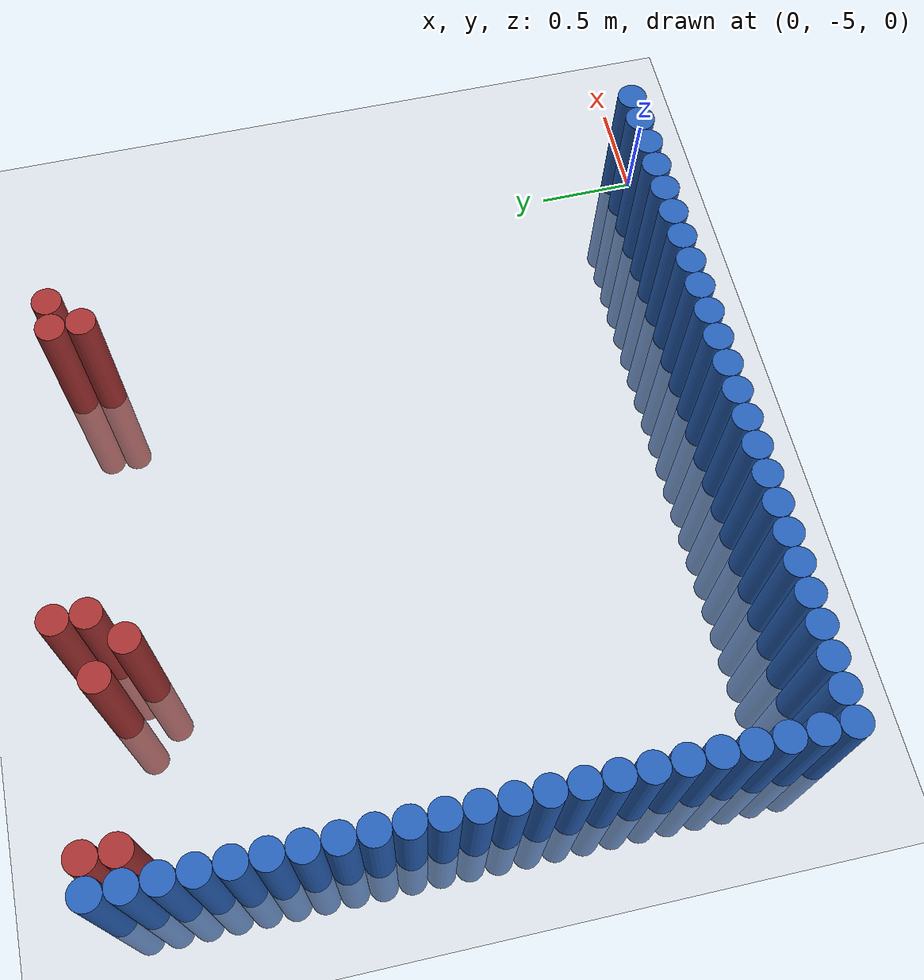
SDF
<sdf version="1.7">
 <world name="default">
  <model name="ground_plane">
   <static>1</static>
   <link name="link">
    <collision name="collision">
     <geometry><plane><normal>0 0 1</normal><size>100 100</size></plane></geometry>
     <surface><friction><ode><mu>100</mu><mu2>50</mu2></ode></friction></surface>
    </collision>
    <visual name="visual">
     <cast_shadows>0</cast_shadows>
     <geometry><plane><normal>0 0 1</normal><size>100 100</size></plane></geometry>
     <material>
      <script><uri>file://media/materials/scripts/gazebo.material</uri><name>Gazebo/Grey</name></script>
     </material>
    </visual>
   </link>
  </model>
  <model name="unit_cylinder_26">
   <static>1</static>
   <pose>0.025 -4.925 0 0 -0 0</pose>
   <link name="link">
    <inertial>
     <mass>1</mass>
     <inertia><ixx>0.145833</ixx><ixy>0</ixy><ixz>0</ixz><iyy>0.145833</iyy><iyz>0</iyz><izz>0.125</izz></inertia>
    </inertial>
    <collision name="collision">
     <geometry><cylinder><radius>0.075</radius><length>1.5</length></cylinder></geometry>
    </collision>
    <visual name="visual">
     <geometry><cylinder><radius>0.075</radius><length>1.5</length></cylinder></geometry>
     <material><ambient>0.152 0.379 0.72 1</ambient><diffuse>0.152 0.379 0.72 1</diffuse></material>
     <material>
      <script><name>Gazebo/Grey</name><uri>file://media/materials/scripts/gazebo.material</uri></script>
     </material>
    </visual>
   </link>
  </model>
  <model name="unit_cylinder_27">
   <static>1</static>
   <pose>-0.125 -4.925 0 0 -0 0</pose>
   <link name="link">
    <inertial>
     <mass>1</mass>
     <inertia><ixx>0.145833</ixx><ixy>0</ixy><ixz>0</ixz><iyy>0.145833</iyy><iyz>0</iyz><izz>0.125</izz></inertia>
    </inertial>
    <collision name="collision">
     <geometry><cylinder><radius>0.075</radius><length>1.5</length></cylinder></geometry>
    </collision>
    <visual name="visual">
     <geometry><cylinder><radius>0.075</radius><length>1.5</length></cylinder></geometry>
     <material><ambient>0.152 0.379 0.72 1</ambient><diffuse>0.152 0.379 0.72 1</diffuse></material>
     <material>
      <script><name>Gazebo/Grey</name><uri>file://media/materials/scripts/gazebo.material</uri></script>
     </material>
    </visual>
   </link>
  </model>
  <model name="unit_cylinder_28">
   <static>1</static>
   <pose>-0.275 -4.925 0 0 -0 0</pose>
   <link name="link">
    <inertial>
     <mass>1</mass>
     <inertia><ixx>0.145833</ixx><ixy>0</ixy><ixz>0</ixz><iyy>0.145833</iyy><iyz>0</iyz><izz>0.125</izz></inertia>
    </inertial>
    <collision name="collision">
     <geometry><cylinder><radius>0.075</radius><length>1.5</length></cylinder></geometry>
    </collision>
    <visual name="visual">
     <geometry><cylinder><radius>0.075</radius><length>1.5</length></cylinder></geometry>
     <material><ambient>0.152 0.379 0.72 1</ambient><diffuse>0.152 0.379 0.72 1</diffuse></material>
     <material>
      <script><name>Gazebo/Grey</name><uri>file://media/materials/scripts/gazebo.material</uri></script>
     </material>
    </visual>
   </link>
  </model>
  <model name="unit_cylinder_29">
   <static>1</static>
   <pose>-0.425 -4.925 0 0 -0 0</pose>
   <link name="link">
    <inertial>
     <mass>1</mass>
     <inertia><ixx>0.145833</ixx><ixy>0</ixy><ixz>0</ixz><iyy>0.145833</iyy><iyz>0</iyz><izz>0.125</izz></inertia>
    </inertial>
    <collision name="collision">
     <geometry><cylinder><radius>0.075</radius><length>1.5</length></cylinder></geometry>
    </collision>
    <visual name="visual">
     <geometry><cylinder><radius>0.075</radius><length>1.5</length></cylinder></geometry>
     <material><ambient>0.152 0.379 0.72 1</ambient><diffuse>0.152 0.379 0.72 1</diffuse></material>
     <material>
      <script><name>Gazebo/Grey</name><uri>file://media/materials/scripts/gazebo.material</uri></script>
     </material>
    </visual>
   </link>
  </model>
  <model name="unit_cylinder_30">
   <static>1</static>
   <pose>-0.575 -4.925 0 0 -0 0</pose>
   <link name="link">
    <inertial>
     <mass>1</mass>
     <inertia><ixx>0.145833</ixx><ixy>0</ixy><ixz>0</ixz><iyy>0.145833</iyy><iyz>0</iyz><izz>0.125</izz></inertia>
    </inertial>
    <collision name="collision">
     <geometry><cylinder><radius>0.075</radius><length>1.5</length></cylinder></geometry>
    </collision>
    <visual name="visual">
     <geometry><cylinder><radius>0.075</radius><length>1.5</length></cylinder></geometry>
     <material><ambient>0.152 0.379 0.72 1</ambient><diffuse>0.152 0.379 0.72 1</diffuse></material>
     <material>
      <script><name>Gazebo/Grey</name><uri>file://media/materials/scripts/gazebo.material</uri></script>
     </material>
    </visual>
   </link>
  </model>
  <model name="unit_cylinder_31">
   <static>1</static>
   <pose>-0.725 -4.925 0 0 -0 0</pose>
   <link name="link">
    <inertial>
     <mass>1</mass>
     <inertia><ixx>0.145833</ixx><ixy>0</ixy><ixz>0</ixz><iyy>0.145833</iyy><iyz>0</iyz><izz>0.125</izz></inertia>
    </inertial>
    <collision name="collision">
     <geometry><cylinder><radius>0.075</radius><length>1.5</length></cylinder></geometry>
    </collision>
    <visual name="visual">
     <geometry><cylinder><radius>0.075</radius><length>1.5</length></cylinder></geometry>
     <material><ambient>0.152 0.379 0.72 1</ambient><diffuse>0.152 0.379 0.72 1</diffuse></material>
     <material>
      <script><name>Gazebo/Grey</name><uri>file://media/materials/scripts/gazebo.material</uri></script>
     </material>
    </visual>
   </link>
  </model>
  <model name="unit_cylinder_32">
   <static>1</static>
   <pose>-0.875 -4.925 0 0 -0 0</pose>
   <link name="link">
    <inertial>
     <mass>1</mass>
     <inertia><ixx>0.145833</ixx><ixy>0</ixy><ixz>0</ixz><iyy>0.145833</iyy><iyz>0</iyz><izz>0.125</izz></inertia>
    </inertial>
    <collision name="collision">
     <geometry><cylinder><radius>0.075</radius><length>1.5</length></cylinder></geometry>
    </collision>
    <visual name="visual">
     <geometry><cylinder><radius>0.075</radius><length>1.5</length></cylinder></geometry>
     <material><ambient>0.152 0.379 0.72 1</ambient><diffuse>0.152 0.379 0.72 1</diffuse></material>
     <material>
      <script><name>Gazebo/Grey</name><uri>file://media/materials/scripts/gazebo.material</uri></script>
     </material>
    </visual>
   </link>
  </model>
  <model name="unit_cylinder_33">
   <static>1</static>
   <pose>-1.025 -4.925 0 0 -0 0</pose>
   <link name="link">
    <inertial>
     <mass>1</mass>
     <inertia><ixx>0.145833</ixx><ixy>0</ixy><ixz>0</ixz><iyy>0.145833</iyy><iyz>0</iyz><izz>0.125</izz></inertia>
    </inertial>
    <collision name="collision">
     <geometry><cylinder><radius>0.075</radius><length>1.5</length></cylinder></geometry>
    </collision>
    <visual name="visual">
     <geometry><cylinder><radius>0.075</radius><length>1.5</length></cylinder></geometry>
     <material><ambient>0.152 0.379 0.72 1</ambient><diffuse>0.152 0.379 0.72 1</diffuse></material>
     <material>
      <script><name>Gazebo/Grey</name><uri>file://media/materials/scripts/gazebo.material</uri></script>
     </material>
    </visual>
   </link>
  </model>
  <model name="unit_cylinder_34">
   <static>1</static>
   <pose>-1.175 -4.925 0 0 -0 0</pose>
   <link name="link">
    <inertial>
     <mass>1</mass>
     <inertia><ixx>0.145833</ixx><ixy>0</ixy><ixz>0</ixz><iyy>0.145833</iyy><iyz>0</iyz><izz>0.125</izz></inertia>
    </inertial>
    <collision name="collision">
     <geometry><cylinder><radius>0.075</radius><length>1.5</length></cylinder></geometry>
    </collision>
    <visual name="visual">
     <geometry><cylinder><radius>0.075</radius><length>1.5</length></cylinder></geometry>
     <material><ambient>0.152 0.379 0.72 1</ambient><diffuse>0.152 0.379 0.72 1</diffuse></material>
     <material>
      <script><name>Gazebo/Grey</name><uri>file://media/materials/scripts/gazebo.material</uri></script>
     </material>
    </visual>
   </link>
  </model>
  <model name="unit_cylinder_35">
   <static>1</static>
   <pose>-1.325 -4.925 0 0 -0 0</pose>
   <link name="link">
    <inertial>
     <mass>1</mass>
     <inertia><ixx>0.145833</ixx><ixy>0</ixy><ixz>0</ixz><iyy>0.145833</iyy><iyz>0</iyz><izz>0.125</izz></inertia>
    </inertial>
    <collision name="collision">
     <geometry><cylinder><radius>0.075</radius><length>1.5</length></cylinder></geometry>
    </collision>
    <visual name="visual">
     <geometry><cylinder><radius>0.075</radius><length>1.5</length></cylinder></geometry>
     <material><ambient>0.152 0.379 0.72 1</ambient><diffuse>0.152 0.379 0.72 1</diffuse></material>
     <material>
      <script><name>Gazebo/Grey</name><uri>file://media/materials/scripts/gazebo.material</uri></script>
     </material>
    </visual>
   </link>
  </model>
  <model name="unit_cylinder_36">
   <static>1</static>
   <pose>-1.475 -4.925 0 0 -0 0</pose>
   <link name="link">
    <inertial>
     <mass>1</mass>
     <inertia><ixx>0.145833</ixx><ixy>0</ixy><ixz>0</ixz><iyy>0.145833</iyy><iyz>0</iyz><izz>0.125</izz></inertia>
    </inertial>
    <collision name="collision">
     <geometry><cylinder><radius>0.075</radius><length>1.5</length></cylinder></geometry>
    </collision>
    <visual name="visual">
     <geometry><cylinder><radius>0.075</radius><length>1.5</length></cylinder></geometry>
     <material><ambient>0.152 0.379 0.72 1</ambient><diffuse>0.152 0.379 0.72 1</diffuse></material>
     <material>
      <script><name>Gazebo/Grey</name><uri>file://media/materials/scripts/gazebo.material</uri></script>
     </material>
    </visual>
   </link>
  </model>
  <model name="unit_cylinder_37">
   <static>1</static>
   <pose>-1.625 -4.925 0 0 -0 0</pose>
   <link name="link">
    <inertial>
     <mass>1</mass>
     <inertia><ixx>0.145833</ixx><ixy>0</ixy><ixz>0</ixz><iyy>0.145833</iyy><iyz>0</iyz><izz>0.125</izz></inertia>
    </inertial>
    <collision name="collision">
     <geometry><cylinder><radius>0.075</radius><length>1.5</length></cylinder></geometry>
    </collision>
    <visual name="visual">
     <geometry><cylinder><radius>0.075</radius><length>1.5</length></cylinder></geometry>
     <material><ambient>0.152 0.379 0.72 1</ambient><diffuse>0.152 0.379 0.72 1</diffuse></material>
     <material>
      <script><name>Gazebo/Grey</name><uri>file://media/materials/scripts/gazebo.material</uri></script>
     </material>
    </visual>
   </link>
  </model>
  <model name="unit_cylinder_38">
   <static>1</static>
   <pose>-1.775 -4.925 0 0 -0 0</pose>
   <link name="link">
    <inertial>
     <mass>1</mass>
     <inertia><ixx>0.145833</ixx><ixy>0</ixy><ixz>0</ixz><iyy>0.145833</iyy><iyz>0</iyz><izz>0.125</izz></inertia>
    </inertial>
    <collision name="collision">
     <geometry><cylinder><radius>0.075</radius><length>1.5</length></cylinder></geometry>
    </collision>
    <visual name="visual">
     <geometry><cylinder><radius>0.075</radius><length>1.5</length></cylinder></geometry>
     <material><ambient>0.152 0.379 0.72 1</ambient><diffuse>0.152 0.379 0.72 1</diffuse></material>
     <material>
      <script><name>Gazebo/Grey</name><uri>file://media/materials/scripts/gazebo.material</uri></script>
     </material>
    </visual>
   </link>
  </model>
  <model name="unit_cylinder_39">
   <static>1</static>
   <pose>-1.925 -4.925 0 0 -0 0</pose>
   <link name="link">
    <inertial>
     <mass>1</mass>
     <inertia><ixx>0.145833</ixx><ixy>0</ixy><ixz>0</ixz><iyy>0.145833</iyy><iyz>0</iyz><izz>0.125</izz></inertia>
    </inertial>
    <collision name="collision">
     <geometry><cylinder><radius>0.075</radius><length>1.5</length></cylinder></geometry>
    </collision>
    <visual name="visual">
     <geometry><cylinder><radius>0.075</radius><length>1.5</length></cylinder></geometry>
     <material><ambient>0.152 0.379 0.72 1</ambient><diffuse>0.152 0.379 0.72 1</diffuse></material>
     <material>
      <script><name>Gazebo/Grey</name><uri>file://media/materials/scripts/gazebo.material</uri></script>
     </material>
    </visual>
   </link>
  </model>
  <model name="unit_cylinder_40">
   <static>1</static>
   <pose>-2.075 -4.925 0 0 -0 0</pose>
   <link name="link">
    <inertial>
     <mass>1</mass>
     <inertia><ixx>0.145833</ixx><ixy>0</ixy><ixz>0</ixz><iyy>0.145833</iyy><iyz>0</iyz><izz>0.125</izz></inertia>
    </inertial>
    <collision name="collision">
     <geometry><cylinder><radius>0.075</radius><length>1.5</length></cylinder></geometry>
    </collision>
    <visual name="visual">
     <geometry><cylinder><radius>0.075</radius><length>1.5</length></cylinder></geometry>
     <material><ambient>0.152 0.379 0.72 1</ambient><diffuse>0.152 0.379 0.72 1</diffuse></material>
     <material>
      <script><name>Gazebo/Grey</name><uri>file://media/materials/scripts/gazebo.material</uri></script>
     </material>
    </visual>
   </link>
  </model>
  <model name="unit_cylinder_41">
   <static>1</static>
   <pose>-2.225 -4.925 0 0 -0 0</pose>
   <link name="link">
    <inertial>
     <mass>1</mass>
     <inertia><ixx>0.145833</ixx><ixy>0</ixy><ixz>0</ixz><iyy>0.145833</iyy><iyz>0</iyz><izz>0.125</izz></inertia>
    </inertial>
    <collision name="collision">
     <geometry><cylinder><radius>0.075</radius><length>1.5</length></cylinder></geometry>
    </collision>
    <visual name="visual">
     <geometry><cylinder><radius>0.075</radius><length>1.5</length></cylinder></geometry>
     <material><ambient>0.152 0.379 0.72 1</ambient><diffuse>0.152 0.379 0.72 1</diffuse></material>
     <material>
      <script><name>Gazebo/Grey</name><uri>file://media/materials/scripts/gazebo.material</uri></script>
     </material>
    </visual>
   </link>
  </model>
  <model name="unit_cylinder_42">
   <static>1</static>
   <pose>-2.375 -4.925 0 0 -0 0</pose>
   <link name="link">
    <inertial>
     <mass>1</mass>
     <inertia><ixx>0.145833</ixx><ixy>0</ixy><ixz>0</ixz><iyy>0.145833</iyy><iyz>0</iyz><izz>0.125</izz></inertia>
    </inertial>
    <collision name="collision">
     <geometry><cylinder><radius>0.075</radius><length>1.5</length></cylinder></geometry>
    </collision>
    <visual name="visual">
     <geometry><cylinder><radius>0.075</radius><length>1.5</length></cylinder></geometry>
     <material><ambient>0.152 0.379 0.72 1</ambient><diffuse>0.152 0.379 0.72 1</diffuse></material>
     <material>
      <script><name>Gazebo/Grey</name><uri>file://media/materials/scripts/gazebo.material</uri></script>
     </material>
    </visual>
   </link>
  </model>
  <model name="unit_cylinder_43">
   <static>1</static>
   <pose>-2.525 -4.925 0 0 -0 0</pose>
   <link name="link">
    <inertial>
     <mass>1</mass>
     <inertia><ixx>0.145833</ixx><ixy>0</ixy><ixz>0</ixz><iyy>0.145833</iyy><iyz>0</iyz><izz>0.125</izz></inertia>
    </inertial>
    <collision name="collision">
     <geometry><cylinder><radius>0.075</radius><length>1.5</length></cylinder></geometry>
    </collision>
    <visual name="visual">
     <geometry><cylinder><radius>0.075</radius><length>1.5</length></cylinder></geometry>
     <material><ambient>0.152 0.379 0.72 1</ambient><diffuse>0.152 0.379 0.72 1</diffuse></material>
     <material>
      <script><name>Gazebo/Grey</name><uri>file://media/materials/scripts/gazebo.material</uri></script>
     </material>
    </visual>
   </link>
  </model>
  <model name="unit_cylinder_44">
   <static>1</static>
   <pose>-2.675 -4.925 0 0 -0 0</pose>
   <link name="link">
    <inertial>
     <mass>1</mass>
     <inertia><ixx>0.145833</ixx><ixy>0</ixy><ixz>0</ixz><iyy>0.145833</iyy><iyz>0</iyz><izz>0.125</izz></inertia>
    </inertial>
    <collision name="collision">
     <geometry><cylinder><radius>0.075</radius><length>1.5</length></cylinder></geometry>
    </collision>
    <visual name="visual">
     <geometry><cylinder><radius>0.075</radius><length>1.5</length></cylinder></geometry>
     <material><ambient>0.152 0.379 0.72 1</ambient><diffuse>0.152 0.379 0.72 1</diffuse></material>
     <material>
      <script><name>Gazebo/Grey</name><uri>file://media/materials/scripts/gazebo.material</uri></script>
     </material>
    </visual>
   </link>
  </model>
  <model name="unit_cylinder_45">
   <static>1</static>
   <pose>-2.825 -4.925 0 0 -0 0</pose>
   <link name="link">
    <inertial>
     <mass>1</mass>
     <inertia><ixx>0.145833</ixx><ixy>0</ixy><ixz>0</ixz><iyy>0.145833</iyy><iyz>0</iyz><izz>0.125</izz></inertia>
    </inertial>
    <collision name="collision">
     <geometry><cylinder><radius>0.075</radius><length>1.5</length></cylinder></geometry>
    </collision>
    <visual name="visual">
     <geometry><cylinder><radius>0.075</radius><length>1.5</length></cylinder></geometry>
     <material><ambient>0.152 0.379 0.72 1</ambient><diffuse>0.152 0.379 0.72 1</diffuse></material>
     <material>
      <script><name>Gazebo/Grey</name><uri>file://media/materials/scripts/gazebo.material</uri></script>
     </material>
    </visual>
   </link>
  </model>
  <model name="unit_cylinder_46">
   <static>1</static>
   <pose>-2.975 -4.925 0 0 -0 0</pose>
   <link name="link">
    <inertial>
     <mass>1</mass>
     <inertia><ixx>0.145833</ixx><ixy>0</ixy><ixz>0</ixz><iyy>0.145833</iyy><iyz>0</iyz><izz>0.125</izz></inertia>
    </inertial>
    <collision name="collision">
     <geometry><cylinder><radius>0.075</radius><length>1.5</length></cylinder></geometry>
    </collision>
    <visual name="visual">
     <geometry><cylinder><radius>0.075</radius><length>1.5</length></cylinder></geometry>
     <material><ambient>0.152 0.379 0.72 1</ambient><diffuse>0.152 0.379 0.72 1</diffuse></material>
     <material>
      <script><name>Gazebo/Grey</name><uri>file://media/materials/scripts/gazebo.material</uri></script>
     </material>
    </visual>
   </link>
  </model>
  <model name="unit_cylinder_47">
   <static>1</static>
   <pose>-3.125 -4.925 0 0 -0 0</pose>
   <link name="link">
    <inertial>
     <mass>1</mass>
     <inertia><ixx>0.145833</ixx><ixy>0</ixy><ixz>0</ixz><iyy>0.145833</iyy><iyz>0</iyz><izz>0.125</izz></inertia>
    </inertial>
    <collision name="collision">
     <geometry><cylinder><radius>0.075</radius><length>1.5</length></cylinder></geometry>
    </collision>
    <visual name="visual">
     <geometry><cylinder><radius>0.075</radius><length>1.5</length></cylinder></geometry>
     <material><ambient>0.152 0.379 0.72 1</ambient><diffuse>0.152 0.379 0.72 1</diffuse></material>
     <material>
      <script><name>Gazebo/Grey</name><uri>file://media/materials/scripts/gazebo.material</uri></script>
     </material>
    </visual>
   </link>
  </model>
  <model name="unit_cylinder_48">
   <static>1</static>
   <pose>-3.275 -4.925 0 0 -0 0</pose>
   <link name="link">
    <inertial>
     <mass>1</mass>
     <inertia><ixx>0.145833</ixx><ixy>0</ixy><ixz>0</ixz><iyy>0.145833</iyy><iyz>0</iyz><izz>0.125</izz></inertia>
    </inertial>
    <collision name="collision">
     <geometry><cylinder><radius>0.075</radius><length>1.5</length></cylinder></geometry>
    </collision>
    <visual name="visual">
     <geometry><cylinder><radius>0.075</radius><length>1.5</length></cylinder></geometry>
     <material><ambient>0.152 0.379 0.72 1</ambient><diffuse>0.152 0.379 0.72 1</diffuse></material>
     <material>
      <script><name>Gazebo/Grey</name><uri>file://media/materials/scripts/gazebo.material</uri></script>
     </material>
    </visual>
   </link>
  </model>
  <model name="unit_cylinder_49">
   <static>1</static>
   <pose>-3.425 -4.925 0 0 -0 0</pose>
   <link name="link">
    <inertial>
     <mass>1</mass>
     <inertia><ixx>0.145833</ixx><ixy>0</ixy><ixz>0</ixz><iyy>0.145833</iyy><iyz>0</iyz><izz>0.125</izz></inertia>
    </inertial>
    <collision name="collision">
     <geometry><cylinder><radius>0.075</radius><length>1.5</length></cylinder></geometry>
    </collision>
    <visual name="visual">
     <geometry><cylinder><radius>0.075</radius><length>1.5</length></cylinder></geometry>
     <material><ambient>0.152 0.379 0.72 1</ambient><diffuse>0.152 0.379 0.72 1</diffuse></material>
     <material>
      <script><name>Gazebo/Grey</name><uri>file://media/materials/scripts/gazebo.material</uri></script>
     </material>
    </visual>
   </link>
  </model>
  <model name="unit_cylinder_51">
   <static>1</static>
   <pose>-3.425 -4.775 0 0 -0 0</pose>
   <link name="link">
    <inertial>
     <mass>1</mass>
     <inertia><ixx>0.145833</ixx><ixy>0</ixy><ixz>0</ixz><iyy>0.145833</iyy><iyz>0</iyz><izz>0.125</izz></inertia>
    </inertial>
    <collision name="collision">
     <geometry><cylinder><radius>0.075</radius><length>1.5</length></cylinder></geometry>
    </collision>
    <visual name="visual">
     <geometry><cylinder><radius>0.075</radius><length>1.5</length></cylinder></geometry>
     <material><ambient>0.152 0.379 0.72 1</ambient><diffuse>0.152 0.379 0.72 1</diffuse></material>
     <material>
      <script><name>Gazebo/Grey</name><uri>file://media/materials/scripts/gazebo.material</uri></script>
     </material>
    </visual>
   </link>
  </model>
  <model name="unit_cylinder_53">
   <static>1</static>
   <pose>-3.425 -4.625 0 0 -0 0</pose>
   <link name="link">
    <inertial>
     <mass>1</mass>
     <inertia><ixx>0.145833</ixx><ixy>0</ixy><ixz>0</ixz><iyy>0.145833</iyy><iyz>0</iyz><izz>0.125</izz></inertia>
    </inertial>
    <collision name="collision">
     <geometry><cylinder><radius>0.075</radius><length>1.5</length></cylinder></geometry>
    </collision>
    <visual name="visual">
     <geometry><cylinder><radius>0.075</radius><length>1.5</length></cylinder></geometry>
     <material><ambient>0.152 0.379 0.72 1</ambient><diffuse>0.152 0.379 0.72 1</diffuse></material>
     <material>
      <script><name>Gazebo/Grey</name><uri>file://media/materials/scripts/gazebo.material</uri></script>
     </material>
    </visual>
   </link>
  </model>
  <model name="unit_cylinder_55">
   <static>1</static>
   <pose>-3.425 -4.475 0 0 -0 0</pose>
   <link name="link">
    <inertial>
     <mass>1</mass>
     <inertia><ixx>0.145833</ixx><ixy>0</ixy><ixz>0</ixz><iyy>0.145833</iyy><iyz>0</iyz><izz>0.125</izz></inertia>
    </inertial>
    <collision name="collision">
     <geometry><cylinder><radius>0.075</radius><length>1.5</length></cylinder></geometry>
    </collision>
    <visual name="visual">
     <geometry><cylinder><radius>0.075</radius><length>1.5</length></cylinder></geometry>
     <material><ambient>0.152 0.379 0.72 1</ambient><diffuse>0.152 0.379 0.72 1</diffuse></material>
     <material>
      <script><name>Gazebo/Grey</name><uri>file://media/materials/scripts/gazebo.material</uri></script>
     </material>
    </visual>
   </link>
  </model>
  <model name="unit_cylinder_57">
   <static>1</static>
   <pose>-3.425 -4.325 0 0 -0 0</pose>
   <link name="link">
    <inertial>
     <mass>1</mass>
     <inertia><ixx>0.145833</ixx><ixy>0</ixy><ixz>0</ixz><iyy>0.145833</iyy><iyz>0</iyz><izz>0.125</izz></inertia>
    </inertial>
    <collision name="collision">
     <geometry><cylinder><radius>0.075</radius><length>1.5</length></cylinder></geometry>
    </collision>
    <visual name="visual">
     <geometry><cylinder><radius>0.075</radius><length>1.5</length></cylinder></geometry>
     <material><ambient>0.152 0.379 0.72 1</ambient><diffuse>0.152 0.379 0.72 1</diffuse></material>
     <material>
      <script><name>Gazebo/Grey</name><uri>file://media/materials/scripts/gazebo.material</uri></script>
     </material>
    </visual>
   </link>
  </model>
  <model name="unit_cylinder_59">
   <static>1</static>
   <pose>-3.425 -4.175 0 0 -0 0</pose>
   <link name="link">
    <inertial>
     <mass>1</mass>
     <inertia><ixx>0.145833</ixx><ixy>0</ixy><ixz>0</ixz><iyy>0.145833</iyy><iyz>0</iyz><izz>0.125</izz></inertia>
    </inertial>
    <collision name="collision">
     <geometry><cylinder><radius>0.075</radius><length>1.5</length></cylinder></geometry>
    </collision>
    <visual name="visual">
     <geometry><cylinder><radius>0.075</radius><length>1.5</length></cylinder></geometry>
     <material><ambient>0.152 0.379 0.72 1</ambient><diffuse>0.152 0.379 0.72 1</diffuse></material>
     <material>
      <script><name>Gazebo/Grey</name><uri>file://media/materials/scripts/gazebo.material</uri></script>
     </material>
    </visual>
   </link>
  </model>
  <model name="unit_cylinder_61">
   <static>1</static>
   <pose>-3.425 -4.025 0 0 -0 0</pose>
   <link name="link">
    <inertial>
     <mass>1</mass>
     <inertia><ixx>0.145833</ixx><ixy>0</ixy><ixz>0</ixz><iyy>0.145833</iyy><iyz>0</iyz><izz>0.125</izz></inertia>
    </inertial>
    <collision name="collision">
     <geometry><cylinder><radius>0.075</radius><length>1.5</length></cylinder></geometry>
    </collision>
    <visual name="visual">
     <geometry><cylinder><radius>0.075</radius><length>1.5</length></cylinder></geometry>
     <material><ambient>0.152 0.379 0.72 1</ambient><diffuse>0.152 0.379 0.72 1</diffuse></material>
     <material>
      <script><name>Gazebo/Grey</name><uri>file://media/materials/scripts/gazebo.material</uri></script>
     </material>
    </visual>
   </link>
  </model>
  <model name="unit_cylinder_63">
   <static>1</static>
   <pose>-3.425 -3.875 0 0 -0 0</pose>
   <link name="link">
    <inertial>
     <mass>1</mass>
     <inertia><ixx>0.145833</ixx><ixy>0</ixy><ixz>0</ixz><iyy>0.145833</iyy><iyz>0</iyz><izz>0.125</izz></inertia>
    </inertial>
    <collision name="collision">
     <geometry><cylinder><radius>0.075</radius><length>1.5</length></cylinder></geometry>
    </collision>
    <visual name="visual">
     <geometry><cylinder><radius>0.075</radius><length>1.5</length></cylinder></geometry>
     <material><ambient>0.152 0.379 0.72 1</ambient><diffuse>0.152 0.379 0.72 1</diffuse></material>
     <material>
      <script><name>Gazebo/Grey</name><uri>file://media/materials/scripts/gazebo.material</uri></script>
     </material>
    </visual>
   </link>
  </model>
  <model name="unit_cylinder_65">
   <static>1</static>
   <pose>-3.425 -3.725 0 0 -0 0</pose>
   <link name="link">
    <inertial>
     <mass>1</mass>
     <inertia><ixx>0.145833</ixx><ixy>0</ixy><ixz>0</ixz><iyy>0.145833</iyy><iyz>0</iyz><izz>0.125</izz></inertia>
    </inertial>
    <collision name="collision">
     <geometry><cylinder><radius>0.075</radius><length>1.5</length></cylinder></geometry>
    </collision>
    <visual name="visual">
     <geometry><cylinder><radius>0.075</radius><length>1.5</length></cylinder></geometry>
     <material><ambient>0.152 0.379 0.72 1</ambient><diffuse>0.152 0.379 0.72 1</diffuse></material>
     <material>
      <script><name>Gazebo/Grey</name><uri>file://media/materials/scripts/gazebo.material</uri></script>
     </material>
    </visual>
   </link>
  </model>
  <model name="unit_cylinder_67">
   <static>1</static>
   <pose>-3.425 -3.575 0 0 -0 0</pose>
   <link name="link">
    <inertial>
     <mass>1</mass>
     <inertia><ixx>0.145833</ixx><ixy>0</ixy><ixz>0</ixz><iyy>0.145833</iyy><iyz>0</iyz><izz>0.125</izz></inertia>
    </inertial>
    <collision name="collision">
     <geometry><cylinder><radius>0.075</radius><length>1.5</length></cylinder></geometry>
    </collision>
    <visual name="visual">
     <geometry><cylinder><radius>0.075</radius><length>1.5</length></cylinder></geometry>
     <material><ambient>0.152 0.379 0.72 1</ambient><diffuse>0.152 0.379 0.72 1</diffuse></material>
     <material>
      <script><name>Gazebo/Grey</name><uri>file://media/materials/scripts/gazebo.material</uri></script>
     </material>
    </visual>
   </link>
  </model>
  <model name="unit_cylinder_69">
   <static>1</static>
   <pose>-3.425 -3.425 0 0 -0 0</pose>
   <link name="link">
    <inertial>
     <mass>1</mass>
     <inertia><ixx>0.145833</ixx><ixy>0</ixy><ixz>0</ixz><iyy>0.145833</iyy><iyz>0</iyz><izz>0.125</izz></inertia>
    </inertial>
    <collision name="collision">
     <geometry><cylinder><radius>0.075</radius><length>1.5</length></cylinder></geometry>
    </collision>
    <visual name="visual">
     <geometry><cylinder><radius>0.075</radius><length>1.5</length></cylinder></geometry>
     <material><ambient>0.152 0.379 0.72 1</ambient><diffuse>0.152 0.379 0.72 1</diffuse></material>
     <material>
      <script><name>Gazebo/Grey</name><uri>file://media/materials/scripts/gazebo.material</uri></script>
     </material>
    </visual>
   </link>
  </model>
  <model name="unit_cylinder_71">
   <static>1</static>
   <pose>-3.425 -3.275 0 0 -0 0</pose>
   <link name="link">
    <inertial>
     <mass>1</mass>
     <inertia><ixx>0.145833</ixx><ixy>0</ixy><ixz>0</ixz><iyy>0.145833</iyy><iyz>0</iyz><izz>0.125</izz></inertia>
    </inertial>
    <collision name="collision">
     <geometry><cylinder><radius>0.075</radius><length>1.5</length></cylinder></geometry>
    </collision>
    <visual name="visual">
     <geometry><cylinder><radius>0.075</radius><length>1.5</length></cylinder></geometry>
     <material><ambient>0.152 0.379 0.72 1</ambient><diffuse>0.152 0.379 0.72 1</diffuse></material>
     <material>
      <script><name>Gazebo/Grey</name><uri>file://media/materials/scripts/gazebo.material</uri></script>
     </material>
    </visual>
   </link>
  </model>
  <model name="unit_cylinder_73">
   <static>1</static>
   <pose>-3.425 -3.125 0 0 -0 0</pose>
   <link name="link">
    <inertial>
     <mass>1</mass>
     <inertia><ixx>0.145833</ixx><ixy>0</ixy><ixz>0</ixz><iyy>0.145833</iyy><iyz>0</iyz><izz>0.125</izz></inertia>
    </inertial>
    <collision name="collision">
     <geometry><cylinder><radius>0.075</radius><length>1.5</length></cylinder></geometry>
    </collision>
    <visual name="visual">
     <geometry><cylinder><radius>0.075</radius><length>1.5</length></cylinder></geometry>
     <material><ambient>0.152 0.379 0.72 1</ambient><diffuse>0.152 0.379 0.72 1</diffuse></material>
     <material>
      <script><name>Gazebo/Grey</name><uri>file://media/materials/scripts/gazebo.material</uri></script>
     </material>
    </visual>
   </link>
  </model>
  <model name="unit_cylinder_75">
   <static>1</static>
   <pose>-3.425 -2.975 0 0 -0 0</pose>
   <link name="link">
    <inertial>
     <mass>1</mass>
     <inertia><ixx>0.145833</ixx><ixy>0</ixy><ixz>0</ixz><iyy>0.145833</iyy><iyz>0</iyz><izz>0.125</izz></inertia>
    </inertial>
    <collision name="collision">
     <geometry><cylinder><radius>0.075</radius><length>1.5</length></cylinder></geometry>
    </collision>
    <visual name="visual">
     <geometry><cylinder><radius>0.075</radius><length>1.5</length></cylinder></geometry>
     <material><ambient>0.152 0.379 0.72 1</ambient><diffuse>0.152 0.379 0.72 1</diffuse></material>
     <material>
      <script><name>Gazebo/Grey</name><uri>file://media/materials/scripts/gazebo.material</uri></script>
     </material>
    </visual>
   </link>
  </model>
  <model name="unit_cylinder_77">
   <static>1</static>
   <pose>-3.425 -2.825 0 0 -0 0</pose>
   <link name="link">
    <inertial>
     <mass>1</mass>
     <inertia><ixx>0.145833</ixx><ixy>0</ixy><ixz>0</ixz><iyy>0.145833</iyy><iyz>0</iyz><izz>0.125</izz></inertia>
    </inertial>
    <collision name="collision">
     <geometry><cylinder><radius>0.075</radius><length>1.5</length></cylinder></geometry>
    </collision>
    <visual name="visual">
     <geometry><cylinder><radius>0.075</radius><length>1.5</length></cylinder></geometry>
     <material><ambient>0.152 0.379 0.72 1</ambient><diffuse>0.152 0.379 0.72 1</diffuse></material>
     <material>
      <script><name>Gazebo/Grey</name><uri>file://media/materials/scripts/gazebo.material</uri></script>
     </material>
    </visual>
   </link>
  </model>
  <model name="unit_cylinder_79">
   <static>1</static>
   <pose>-3.425 -2.675 0 0 -0 0</pose>
   <link name="link">
    <inertial>
     <mass>1</mass>
     <inertia><ixx>0.145833</ixx><ixy>0</ixy><ixz>0</ixz><iyy>0.145833</iyy><iyz>0</iyz><izz>0.125</izz></inertia>
    </inertial>
    <collision name="collision">
     <geometry><cylinder><radius>0.075</radius><length>1.5</length></cylinder></geometry>
    </collision>
    <visual name="visual">
     <geometry><cylinder><radius>0.075</radius><length>1.5</length></cylinder></geometry>
     <material><ambient>0.152 0.379 0.72 1</ambient><diffuse>0.152 0.379 0.72 1</diffuse></material>
     <material>
      <script><name>Gazebo/Grey</name><uri>file://media/materials/scripts/gazebo.material</uri></script>
     </material>
    </visual>
   </link>
  </model>
  <model name="unit_cylinder_81">
   <static>1</static>
   <pose>-3.425 -2.525 0 0 -0 0</pose>
   <link name="link">
    <inertial>
     <mass>1</mass>
     <inertia><ixx>0.145833</ixx><ixy>0</ixy><ixz>0</ixz><iyy>0.145833</iyy><iyz>0</iyz><izz>0.125</izz></inertia>
    </inertial>
    <collision name="collision">
     <geometry><cylinder><radius>0.075</radius><length>1.5</length></cylinder></geometry>
    </collision>
    <visual name="visual">
     <geometry><cylinder><radius>0.075</radius><length>1.5</length></cylinder></geometry>
     <material><ambient>0.152 0.379 0.72 1</ambient><diffuse>0.152 0.379 0.72 1</diffuse></material>
     <material>
      <script><name>Gazebo/Grey</name><uri>file://media/materials/scripts/gazebo.material</uri></script>
     </material>
    </visual>
   </link>
  </model>
  <model name="unit_cylinder_83">
   <static>1</static>
   <pose>-3.425 -2.375 0 0 -0 0</pose>
   <link name="link">
    <inertial>
     <mass>1</mass>
     <inertia><ixx>0.145833</ixx><ixy>0</ixy><ixz>0</ixz><iyy>0.145833</iyy><iyz>0</iyz><izz>0.125</izz></inertia>
    </inertial>
    <collision name="collision">
     <geometry><cylinder><radius>0.075</radius><length>1.5</length></cylinder></geometry>
    </collision>
    <visual name="visual">
     <geometry><cylinder><radius>0.075</radius><length>1.5</length></cylinder></geometry>
     <material><ambient>0.152 0.379 0.72 1</ambient><diffuse>0.152 0.379 0.72 1</diffuse></material>
     <material>
      <script><name>Gazebo/Grey</name><uri>file://media/materials/scripts/gazebo.material</uri></script>
     </material>
    </visual>
   </link>
  </model>
  <model name="unit_cylinder_85">
   <static>1</static>
   <pose>-3.425 -2.225 0 0 -0 0</pose>
   <link name="link">
    <inertial>
     <mass>1</mass>
     <inertia><ixx>0.145833</ixx><ixy>0</ixy><ixz>0</ixz><iyy>0.145833</iyy><iyz>0</iyz><izz>0.125</izz></inertia>
    </inertial>
    <collision name="collision">
     <geometry><cylinder><radius>0.075</radius><length>1.5</length></cylinder></geometry>
    </collision>
    <visual name="visual">
     <geometry><cylinder><radius>0.075</radius><length>1.5</length></cylinder></geometry>
     <material><ambient>0.152 0.379 0.72 1</ambient><diffuse>0.152 0.379 0.72 1</diffuse></material>
     <material>
      <script><name>Gazebo/Grey</name><uri>file://media/materials/scripts/gazebo.material</uri></script>
     </material>
    </visual>
   </link>
  </model>
  <model name="unit_cylinder_87">
   <static>1</static>
   <pose>-3.425 -2.075 0 0 -0 0</pose>
   <link name="link">
    <inertial>
     <mass>1</mass>
     <inertia><ixx>0.145833</ixx><ixy>0</ixy><ixz>0</ixz><iyy>0.145833</iyy><iyz>0</iyz><izz>0.125</izz></inertia>
    </inertial>
    <collision name="collision">
     <geometry><cylinder><radius>0.075</radius><length>1.5</length></cylinder></geometry>
    </collision>
    <visual name="visual">
     <geometry><cylinder><radius>0.075</radius><length>1.5</length></cylinder></geometry>
     <material><ambient>0.152 0.379 0.72 1</ambient><diffuse>0.152 0.379 0.72 1</diffuse></material>
     <material>
      <script><name>Gazebo/Grey</name><uri>file://media/materials/scripts/gazebo.material</uri></script>
     </material>
    </visual>
   </link>
  </model>
  <model name="unit_cylinder_89">
   <static>1</static>
   <pose>-3.425 -1.925 0 0 -0 0</pose>
   <link name="link">
    <inertial>
     <mass>1</mass>
     <inertia><ixx>0.145833</ixx><ixy>0</ixy><ixz>0</ixz><iyy>0.145833</iyy><iyz>0</iyz><izz>0.125</izz></inertia>
    </inertial>
    <collision name="collision">
     <geometry><cylinder><radius>0.075</radius><length>1.5</length></cylinder></geometry>
    </collision>
    <visual name="visual">
     <geometry><cylinder><radius>0.075</radius><length>1.5</length></cylinder></geometry>
     <material><ambient>0.152 0.379 0.72 1</ambient><diffuse>0.152 0.379 0.72 1</diffuse></material>
     <material>
      <script><name>Gazebo/Grey</name><uri>file://media/materials/scripts/gazebo.material</uri></script>
     </material>
    </visual>
   </link>
  </model>
  <model name="unit_cylinder_91">
   <static>1</static>
   <pose>-3.425 -1.775 0 0 -0 0</pose>
   <link name="link">
    <inertial>
     <mass>1</mass>
     <inertia><ixx>0.145833</ixx><ixy>0</ixy><ixz>0</ixz><iyy>0.145833</iyy><iyz>0</iyz><izz>0.125</izz></inertia>
    </inertial>
    <collision name="collision">
     <geometry><cylinder><radius>0.075</radius><length>1.5</length></cylinder></geometry>
    </collision>
    <visual name="visual">
     <geometry><cylinder><radius>0.075</radius><length>1.5</length></cylinder></geometry>
     <material><ambient>0.152 0.379 0.72 1</ambient><diffuse>0.152 0.379 0.72 1</diffuse></material>
     <material>
      <script><name>Gazebo/Grey</name><uri>file://media/materials/scripts/gazebo.material</uri></script>
     </material>
    </visual>
   </link>
  </model>
  <model name="unit_cylinder_93">
   <static>1</static>
   <pose>-3.425 -1.625 0 0 -0 0</pose>
   <link name="link">
    <inertial>
     <mass>1</mass>
     <inertia><ixx>0.145833</ixx><ixy>0</ixy><ixz>0</ixz><iyy>0.145833</iyy><iyz>0</iyz><izz>0.125</izz></inertia>
    </inertial>
    <collision name="collision">
     <geometry><cylinder><radius>0.075</radius><length>1.5</length></cylinder></geometry>
    </collision>
    <visual name="visual">
     <geometry><cylinder><radius>0.075</radius><length>1.5</length></cylinder></geometry>
     <material><ambient>0.152 0.379 0.72 1</ambient><diffuse>0.152 0.379 0.72 1</diffuse></material>
     <material>
      <script><name>Gazebo/Grey</name><uri>file://media/materials/scripts/gazebo.material</uri></script>
     </material>
    </visual>
   </link>
  </model>
  <model name="unit_cylinder_208">
   <static>1</static>
   <pose>-3.425 -1.925 0 0 -0 0</pose>
   <link name="link">
    <inertial>
     <mass>1</mass>
     <inertia><ixx>0.145833</ixx><ixy>0</ixy><ixz>0</ixz><iyy>0.145833</iyy><iyz>0</iyz><izz>0.125</izz></inertia>
    </inertial>
    <collision name="collision">
     <geometry><cylinder><radius>0.075</radius><length>1.5</length></cylinder></geometry>
    </collision>
    <visual name="visual">
     <geometry><cylinder><radius>0.075</radius><length>1.5</length></cylinder></geometry>
     <material><ambient>0.152 0.379 0.72 1</ambient><diffuse>0.152 0.379 0.72 1</diffuse></material>
     <material>
      <script><name>Gazebo/Grey</name><uri>file://media/materials/scripts/gazebo.material</uri></script>
     </material>
    </visual>
   </link>
  </model>
  <model name="unit_cylinder_209">
   <static>1</static>
   <pose>-3.425 -1.775 0 0 -0 0</pose>
   <link name="link">
    <inertial>
     <mass>1</mass>
     <inertia><ixx>0.145833</ixx><ixy>0</ixy><ixz>0</ixz><iyy>0.145833</iyy><iyz>0</iyz><izz>0.125</izz></inertia>
    </inertial>
    <collision name="collision">
     <geometry><cylinder><radius>0.075</radius><length>1.5</length></cylinder></geometry>
    </collision>
    <visual name="visual">
     <geometry><cylinder><radius>0.075</radius><length>1.5</length></cylinder></geometry>
     <material><ambient>0.152 0.379 0.72 1</ambient><diffuse>0.152 0.379 0.72 1</diffuse></material>
     <material>
      <script><name>Gazebo/Grey</name><uri>file://media/materials/scripts/gazebo.material</uri></script>
     </material>
    </visual>
   </link>
  </model>
  <model name="unit_cylinder_210">
   <static>1</static>
   <pose>-3.425 -1.625 0 0 -0 0</pose>
   <link name="link">
    <inertial>
     <mass>1</mass>
     <inertia><ixx>0.145833</ixx><ixy>0</ixy><ixz>0</ixz><iyy>0.145833</iyy><iyz>0</iyz><izz>0.125</izz></inertia>
    </inertial>
    <collision name="collision">
     <geometry><cylinder><radius>0.075</radius><length>1.5</length></cylinder></geometry>
    </collision>
    <visual name="visual">
     <geometry><cylinder><radius>0.075</radius><length>1.5</length></cylinder></geometry>
     <material><ambient>0.152 0.379 0.72 1</ambient><diffuse>0.152 0.379 0.72 1</diffuse></material>
     <material>
      <script><name>Gazebo/Grey</name><uri>file://media/materials/scripts/gazebo.material</uri></script>
     </material>
    </visual>
   </link>
  </model>
  <model name="unit_cylinder_258">
   <static>1</static>
   <pose>-3.275 -1.775 0 0 -0 0</pose>
   <link name="link">
    <inertial>
     <mass>1</mass>
     <inertia><ixx>0.145833</ixx><ixy>0</ixy><ixz>0</ixz><iyy>0.145833</iyy><iyz>0</iyz><izz>0.125</izz></inertia>
    </inertial>
    <collision name="collision">
     <geometry><cylinder><radius>0.075</radius><length>1.5</length></cylinder></geometry>
    </collision>
    <visual name="visual">
     <geometry><cylinder><radius>0.075</radius><length>1.5</length></cylinder></geometry>
     <material><ambient>0.648 0.192 0.192 1</ambient><diffuse>0.648 0.192 0.192 1</diffuse></material>
     <material>
      <script><name>Gazebo/Grey</name><uri>file://media/materials/scripts/gazebo.material</uri></script>
     </material>
    </visual>
   </link>
  </model>
  <model name="unit_cylinder_259">
   <static>1</static>
   <pose>-3.275 -1.625 0 0 -0 0</pose>
   <link name="link">
    <inertial>
     <mass>1</mass>
     <inertia><ixx>0.145833</ixx><ixy>0</ixy><ixz>0</ixz><iyy>0.145833</iyy><iyz>0</iyz><izz>0.125</izz></inertia>
    </inertial>
    <collision name="collision">
     <geometry><cylinder><radius>0.075</radius><length>1.5</length></cylinder></geometry>
    </collision>
    <visual name="visual">
     <geometry><cylinder><radius>0.075</radius><length>1.5</length></cylinder></geometry>
     <material><ambient>0.648 0.192 0.192 1</ambient><diffuse>0.648 0.192 0.192 1</diffuse></material>
     <material>
      <script><name>Gazebo/Grey</name><uri>file://media/materials/scripts/gazebo.material</uri></script>
     </material>
    </visual>
   </link>
  </model>
  <model name="unit_cylinder_286">
   <static>1</static>
   <pose>-2.525 -1.775 0 0 -0 0</pose>
   <link name="link">
    <inertial>
     <mass>1</mass>
     <inertia><ixx>0.145833</ixx><ixy>0</ixy><ixz>0</ixz><iyy>0.145833</iyy><iyz>0</iyz><izz>0.125</izz></inertia>
    </inertial>
    <collision name="collision">
     <geometry><cylinder><radius>0.075</radius><length>1.5</length></cylinder></geometry>
    </collision>
    <visual name="visual">
     <geometry><cylinder><radius>0.075</radius><length>1.5</length></cylinder></geometry>
     <material><ambient>0.648 0.192 0.192 1</ambient><diffuse>0.648 0.192 0.192 1</diffuse></material>
     <material>
      <script><name>Gazebo/Grey</name><uri>file://media/materials/scripts/gazebo.material</uri></script>
     </material>
    </visual>
   </link>
  </model>
  <model name="unit_cylinder_291">
   <static>1</static>
   <pose>-2.375 -1.925 0 0 -0 0</pose>
   <link name="link">
    <inertial>
     <mass>1</mass>
     <inertia><ixx>0.145833</ixx><ixy>0</ixy><ixz>0</ixz><iyy>0.145833</iyy><iyz>0</iyz><izz>0.125</izz></inertia>
    </inertial>
    <collision name="collision">
     <geometry><cylinder><radius>0.075</radius><length>1.5</length></cylinder></geometry>
    </collision>
    <visual name="visual">
     <geometry><cylinder><radius>0.075</radius><length>1.5</length></cylinder></geometry>
     <material><ambient>0.648 0.192 0.192 1</ambient><diffuse>0.648 0.192 0.192 1</diffuse></material>
     <material>
      <script><name>Gazebo/Grey</name><uri>file://media/materials/scripts/gazebo.material</uri></script>
     </material>
    </visual>
   </link>
  </model>
  <model name="unit_cylinder_296">
   <static>1</static>
   <pose>-2.225 -1.775 0 0 -0 0</pose>
   <link name="link">
    <inertial>
     <mass>1</mass>
     <inertia><ixx>0.145833</ixx><ixy>0</ixy><ixz>0</ixz><iyy>0.145833</iyy><iyz>0</iyz><izz>0.125</izz></inertia>
    </inertial>
    <collision name="collision">
     <geometry><cylinder><radius>0.075</radius><length>1.5</length></cylinder></geometry>
    </collision>
    <visual name="visual">
     <geometry><cylinder><radius>0.075</radius><length>1.5</length></cylinder></geometry>
     <material><ambient>0.648 0.192 0.192 1</ambient><diffuse>0.648 0.192 0.192 1</diffuse></material>
     <material>
      <script><name>Gazebo/Grey</name><uri>file://media/materials/scripts/gazebo.material</uri></script>
     </material>
    </visual>
   </link>
  </model>
  <model name="unit_cylinder_297">
   <static>1</static>
   <pose>-2.225 -1.625 0 0 -0 0</pose>
   <link name="link">
    <inertial>
     <mass>1</mass>
     <inertia><ixx>0.145833</ixx><ixy>0</ixy><ixz>0</ixz><iyy>0.145833</iyy><iyz>0</iyz><izz>0.125</izz></inertia>
    </inertial>
    <collision name="collision">
     <geometry><cylinder><radius>0.075</radius><length>1.5</length></cylinder></geometry>
    </collision>
    <visual name="visual">
     <geometry><cylinder><radius>0.075</radius><length>1.5</length></cylinder></geometry>
     <material><ambient>0.648 0.192 0.192 1</ambient><diffuse>0.648 0.192 0.192 1</diffuse></material>
     <material>
      <script><name>Gazebo/Grey</name><uri>file://media/materials/scripts/gazebo.material</uri></script>
     </material>
    </visual>
   </link>
  </model>
  <model name="unit_cylinder_342">
   <static>1</static>
   <pose>-0.725 -1.925 0 0 -0 0</pose>
   <link name="link">
    <inertial>
     <mass>1</mass>
     <inertia><ixx>0.145833</ixx><ixy>0</ixy><ixz>0</ixz><iyy>0.145833</iyy><iyz>0</iyz><izz>0.125</izz></inertia>
    </inertial>
    <collision name="collision">
     <geometry><cylinder><radius>0.075</radius><length>1.5</length></cylinder></geometry>
    </collision>
    <visual name="visual">
     <geometry><cylinder><radius>0.075</radius><length>1.5</length></cylinder></geometry>
     <material><ambient>0.648 0.192 0.192 1</ambient><diffuse>0.648 0.192 0.192 1</diffuse></material>
     <material>
      <script><name>Gazebo/Grey</name><uri>file://media/materials/scripts/gazebo.material</uri></script>
     </material>
    </visual>
   </link>
  </model>
  <model name="unit_cylinder_343">
   <static>1</static>
   <pose>-0.725 -1.775 0 0 -0 0</pose>
   <link name="link">
    <inertial>
     <mass>1</mass>
     <inertia><ixx>0.145833</ixx><ixy>0</ixy><ixz>0</ixz><iyy>0.145833</iyy><iyz>0</iyz><izz>0.125</izz></inertia>
    </inertial>
    <collision name="collision">
     <geometry><cylinder><radius>0.075</radius><length>1.5</length></cylinder></geometry>
    </collision>
    <visual name="visual">
     <geometry><cylinder><radius>0.075</radius><length>1.5</length></cylinder></geometry>
     <material><ambient>0.648 0.192 0.192 1</ambient><diffuse>0.648 0.192 0.192 1</diffuse></material>
     <material>
      <script><name>Gazebo/Grey</name><uri>file://media/materials/scripts/gazebo.material</uri></script>
     </material>
    </visual>
   </link>
  </model>
  <model name="unit_cylinder_346">
   <static>1</static>
   <pose>-0.575 -1.775 0 0 -0 0</pose>
   <link name="link">
    <inertial>
     <mass>1</mass>
     <inertia><ixx>0.145833</ixx><ixy>0</ixy><ixz>0</ixz><iyy>0.145833</iyy><iyz>0</iyz><izz>0.125</izz></inertia>
    </inertial>
    <collision name="collision">
     <geometry><cylinder><radius>0.075</radius><length>1.5</length></cylinder></geometry>
    </collision>
    <visual name="visual">
     <geometry><cylinder><radius>0.075</radius><length>1.5</length></cylinder></geometry>
     <material><ambient>0.648 0.192 0.192 1</ambient><diffuse>0.648 0.192 0.192 1</diffuse></material>
     <material>
      <script><name>Gazebo/Grey</name><uri>file://media/materials/scripts/gazebo.material</uri></script>
     </material>
    </visual>
   </link>
  </model>
 </world>
</sdf>
